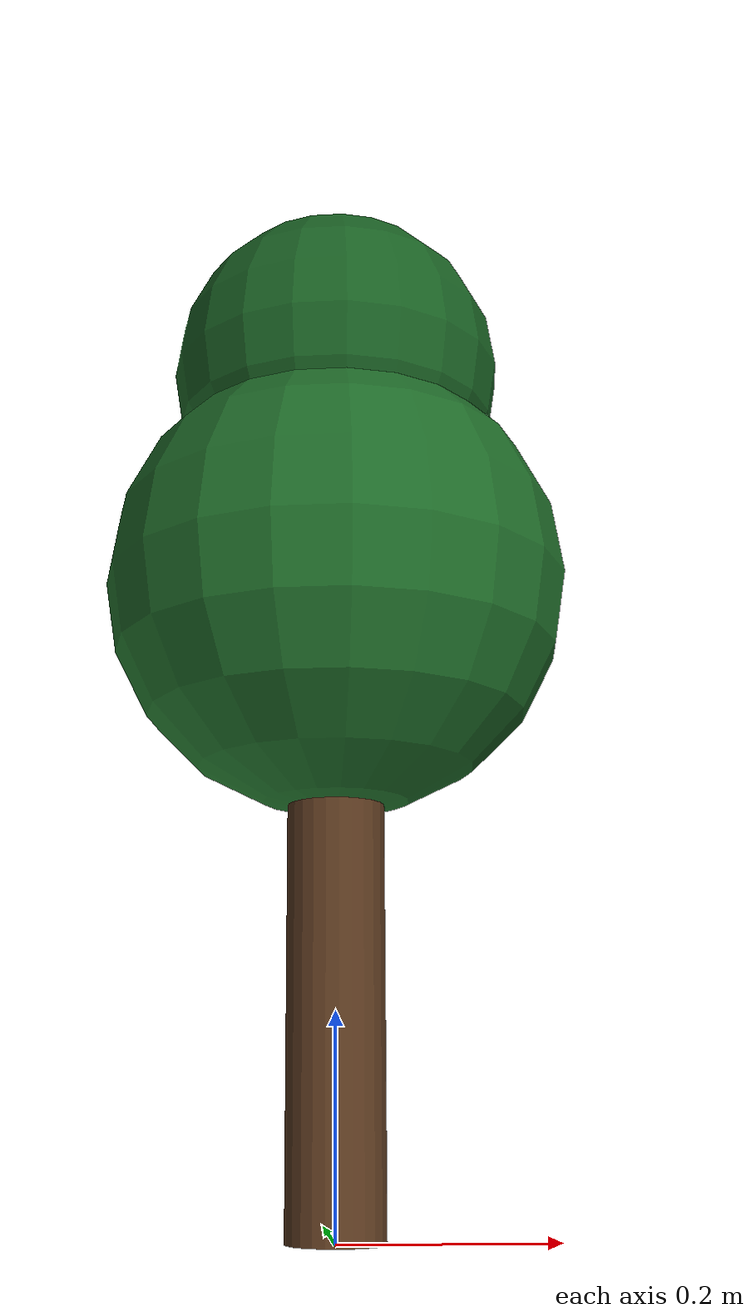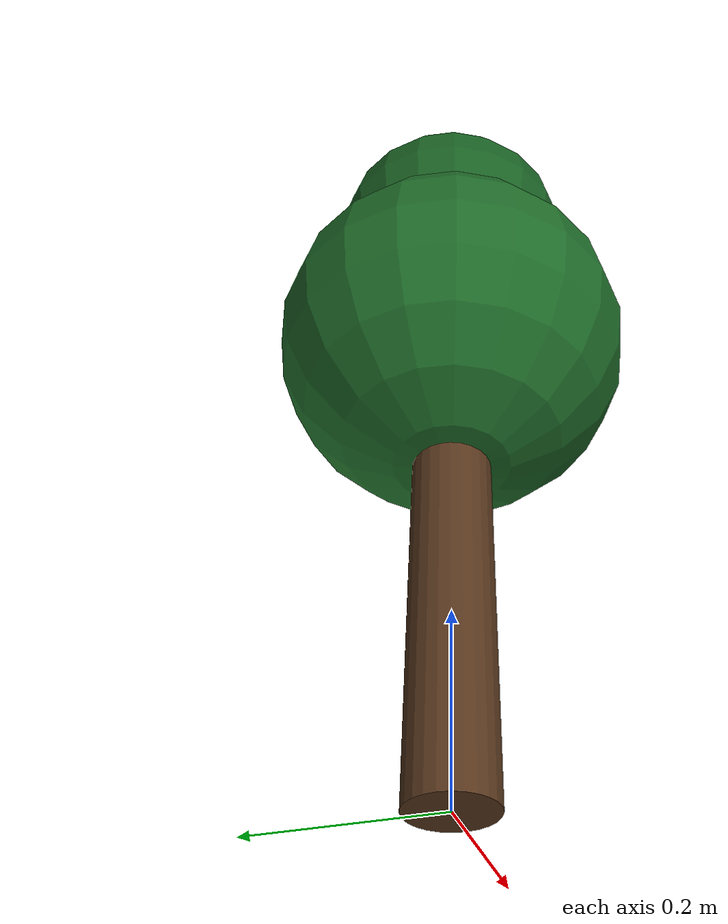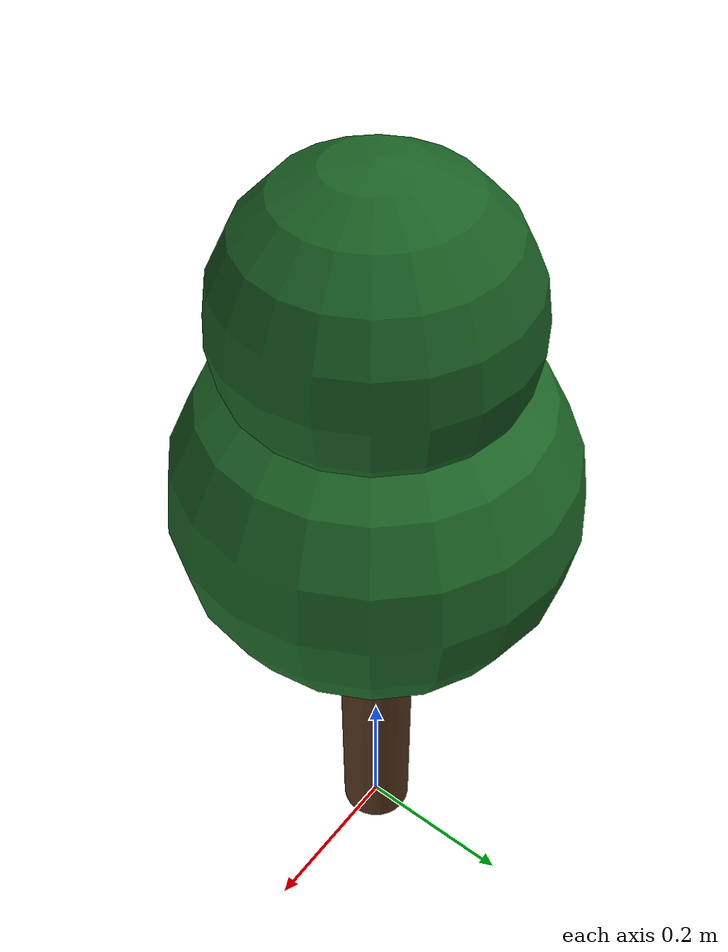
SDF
<sdf version="1.9">
  <model name="pine_tree">
    <static>true</static>
    <link name="pine_link">
      <collision name="trunk_collision">
        <pose>0 0 0.24 0 0 0</pose>
        <geometry>
          <cylinder>
            <radius>0.045</radius>
            <length>0.48</length>
          </cylinder>
        </geometry>
      </collision>

      <visual name="trunk_visual">
        <pose>0 0 0.24 0 0 0</pose>
        <geometry>
          <cylinder>
            <radius>0.045</radius>
            <length>0.48</length>
          </cylinder>
        </geometry>
        <material>
          <ambient>0.35 0.22 0.12 1</ambient>
          <diffuse>0.35 0.22 0.12 1</diffuse>
          <specular>0.02 0.02 0.02 1</specular>
        </material>
      </visual>

      <visual name="canopy_lower">
        <pose>0 0 0.60 0 0 0</pose>
        <geometry>
          <sphere>
            <radius>0.22</radius>
          </sphere>
        </geometry>
        <material>
          <ambient>0.12 0.42 0.16 1</ambient>
          <diffuse>0.12 0.42 0.16 1</diffuse>
          <specular>0.02 0.02 0.02 1</specular>
        </material>
      </visual>

      <visual name="canopy_upper">
        <pose>0 0 0.82 0 0 0</pose>
        <geometry>
          <sphere>
            <radius>0.16</radius>
          </sphere>
        </geometry>
        <material>
          <ambient>0.1 0.38 0.14 1</ambient>
          <diffuse>0.1 0.38 0.14 1</diffuse>
          <specular>0.02 0.02 0.02 1</specular>
        </material>
      </visual>
    </link>
  </model>
</sdf>
